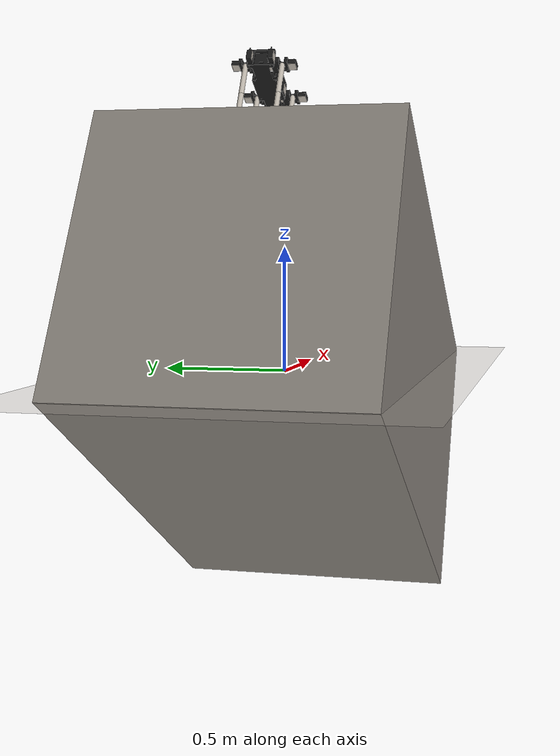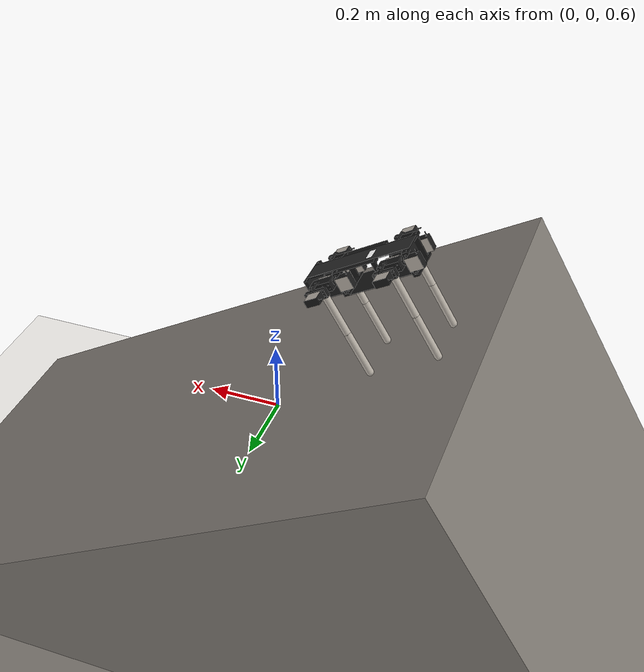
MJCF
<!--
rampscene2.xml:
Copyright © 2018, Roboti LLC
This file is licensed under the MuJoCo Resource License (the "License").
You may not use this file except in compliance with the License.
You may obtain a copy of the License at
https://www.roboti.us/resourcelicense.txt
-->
<mujoco model="Pupper">
<compiler angle="radian" meshdir="mesh/" texturedir="texture/"/>

  <visual>
    <quality shadowsize="16384"/>
  </visual>

  <default>
    <joint type="hinge" limited="true" armature="0.01936" solimplimit="0.9 0.95 0.01" solreflimit="0.01 1" stiffness="0.1" damping="0.5"/>
    <geom conaffinity="0" contype="1" friction="0.2 0.0005 0.00001" condim="6" solimp="0.9 0.95 0.01" solref="0.01 1"/>
    <position forcelimited="true"/>
</default>

    <include file="rampscene2.xml"/>

    <option solver="CG" tolerance="1e-6"/>

    <size nconmax="500" njmax="5000" nstack="5000000"/>

<size nstack="300000" nuser_geom="1"/>

<option timestep="0.0001"/>

<asset>
    <texture builtin="gradient" height="100" rgb1="1 1 1" rgb2="0 0 0" type="skybox" width="100"/>
    <texture builtin="flat" height="1278" mark="cross" markrgb="1 1 1" name="texgeom" random="0.01" rgb1="0.8 0.6 0.4" rgb2="0.8 0.6 0.4" type="cube" width="127"/>
    <material name="geom" texture="texgeom" texuniform="true"/>
  <mesh file="Body.stl"/>
  <mesh file="CLS6336HV.stl"/>
  <mesh file="Hub.stl"/>
  <mesh file="ServoHorn.stl"/>
  <mesh file="UpperLeg.stl"/>
  <mesh file="LowerLeg.stl"/>
  <texture type="2d" file="Oak.png"/>
  <texture type="2d" file="CarbonFiber2D.png" name="CarbonFiber2D"/>
  <texture type="cube" file="CarbonFiber.png" gridsize="3 4" gridlayout=".U..LFRB.D.."/>
  <texture type="cube" file="CLS6336HV.png"/>
  <material name="CarbonFiber" texture="CarbonFiber" specular="0.9" shininess="0.9" reflectance="0.3"/>
  <material name="CLS6336HV" texture="CLS6336HV" specular="0.9" shininess="0.9" reflectance="0.3"/>
  <material name="CarbonFiber2D" texture="CarbonFiber2D" specular="0.9" shininess="0.9" reflectance="0.3"/>
  <material name="Oak" texture="Oak" specular="0.9" shininess="0.9" reflectance="0.3" texrepeat="4 4"/>
  <material name="ABS" rgba=".1 .1 .1 1"/>
</asset>

<worldbody>
    <light pos="0.4 -0.2 1.5" dir="-0.4 0.2 -1.5" cutoff="35"/>
    <geom type="plane" material="Oak" size="2 2 .4" conaffinity="1" condim="3" name="floor"/>
    <body name="torso" pos="-0.252 0 1.1225"  quat="0.9659258262890683 0 0.25881904510252074 0">
        <camera name="track" mode="trackcom" pos="0 -2 0.3" xyaxes="1 0 0 0 0 1"/>
        <freejoint/>
        <body pos="0.0 0.0 -0.03425" quat="-0.7071068 0 0 0.7071068">
          <camera name="puppercam" pos="0 0.12 0.11" quat="0.7453559925 0.6666666 0 0"/>
          <geom type="mesh" mesh="Body" pos="0 -0.133925 0.0015" material="ABS"/>
          <site type="box" pos="0 0 0.0666" size="0.03 0.15 0.002" material="CarbonFiber" rgba=".5 .5 .5 .1"/>
          <!--fr servo-->
          <body pos="0.05 0.028 0.0542" quat="0 -0.7071068 0 0.7071068">
            <geom type="mesh" mesh="CLS6336HV" material="ABS"/>
            <site type="box" pos="0.0205 -0.02 0.01" size="0.018 0.019 0.0101" material="CLS6336HV"/>
          </body>
          <!--fl servo-->
          <body pos="-0.03 0.028 0.0542" quat="0 -0.7071068 0 0.7071068">
            <geom type="mesh" mesh="CLS6336HV" material="ABS"/>
            <site type="box" pos="0.0205 -0.02 0.01" size="0.018 0.019 0.0101" material="CLS6336HV"/>
          </body>
          <!--br servo-->
          <body pos="0.05 -0.1721 0.0542" quat="0 -0.7071068 0 0.7071068">
            <geom type="mesh" mesh="CLS6336HV" material="ABS"/>
            <site type="box" pos="0.0205 -0.02 0.01" size="0.018 0.019 0.0101" material="CLS6336HV"/>
          </body>
          <body pos="-0.03 -0.1721 0.0542" quat="0 -0.7071068 0 0.7071068">
            <!--bl servo-->
            <geom type="mesh" mesh="CLS6336HV" material="ABS"/>
            <site type="box" pos="0.0205 -0.02 0.01" size="0.018 0.019 0.0101" material="CLS6336HV"/>
          </body>
        </body>

        <body name="fr_module" pos="0.1 -0.04 0">
            <body pos="-0.02 -0.042 0.022" quat="0.7071068 0 0.7071068 0">
              <geom type="mesh" mesh="Hub" material="ABS"/>
              <!-- Why are there two different sites here? Do we even use both of them? -->
              <site type="box" pos="0.0129 -0.02 0.02955" quat="0.7071068 0 -0.7071068 0" size="0.018 0.019 0.0101" material="CLS6336HV"/>
              <site type="box" pos="0.0129 0.044 0.02955" quat="0 -0.7071068 0 0.7071068" size="0.018 0.019 0.0101" material="CLS6336HV"/>
            </body>
            <joint name="fr_x" axis="1 0 0" range="-1.57 1.57"/>
            <body name="fr" pos="0 -0.03 0">
                <joint name="fr_y" axis="0 1 0" range="-1.57 1.57"/>
                <geom axisangle="0 1 0 0" name="fr" fromto="0 0 0 0 0 -0.125" size="0.01" type="capsule" material="CarbonFiber2D" density="50"/>
                <body name="fr2" pos="0 0 -0.1235">
                    <joint name="fr_y2" axis="0 1 0" range="-3.14 0.0"/>
                    <geom axisangle="0 1 0 0" name="fr_l2" fromto="0 0 0 0 0 -0.125" size="0.01" type="capsule" material="CarbonFiber2D" density="50"/>
                </body>
            </body>
        </body>

        <body name="fl_module" pos="0.1 0.04 0">
            <body pos="-0.022 0.042 -0.004" quat="0 0.7071068 0 0.7071068">
              <geom type="mesh" mesh="Hub" material="ABS"/>
              <!-- Why are there two different sites here? Do we even use both of them? -->
              <site type="box" pos="0.0129 -0.02 0.02955" quat="0.7071068 0 -0.7071068 0" size="0.018 0.019 0.0101" material="CLS6336HV"/>
              <site type="box" pos="0.0129 0.044 0.02955" quat="0 -0.7071068 0 0.7071068" size="0.018 0.019 0.0101" material="CLS6336HV"/>
            </body>
            <joint name="fl_x" axis="1 0 0" range="-1.57 1.57"/>
            <body name="fl" pos="0 0.03 0">
                <joint name="fl_y" axis="0 1 0" range="-1.57 1.57"/>
                <geom axisangle="0 1 0 0" name="fl" fromto="0 0 0 0 0 -0.125" size="0.01" type="capsule" material="CarbonFiber2D" density="50"/>
                <body name="fl2" pos="0 0 -0.1235">
                    <joint name="fl_y2" axis="0 1 0" range="-3.14 0.0"/>
                    <geom axisangle="0 1 0 0" name="fl_l2" fromto="0 0 0 0 0 -0.125" size="0.01" type="capsule" material="CarbonFiber2D" density="50"/>
                </body>
            </body>
        </body>

        <body name="br_module" pos="-0.1 -0.04 0">
            <body pos="-0.02 -0.042 0.022" quat="0.7071068 0 0.7071068 0">
              <geom type="mesh" mesh="Hub" material="ABS"/>
              <!-- Why are there two different sites here? Do we even use both of them? -->
              <site type="box" pos="0.0129 -0.02 0.02955" quat="0.7071068 0 -0.7071068 0" size="0.018 0.019 0.0101" material="CLS6336HV"/>
              <site type="box" pos="0.0129 0.044 0.02955" quat="0 -0.7071068 0 0.7071068" size="0.018 0.019 0.0101" material="CLS6336HV"/>
            </body>
            <joint name="br_x" axis="1 0 0" range="-1.57 1.57"/>
            <body name="br" pos="0 -0.03 0">
                <joint name="br_y" axis="0 1 0" range="-1.57 1.57"/>
                <geom axisangle="0 1 0 0" name="br" fromto="0 0 0 0 0 -0.125" size="0.01" type="capsule" material="CarbonFiber2D" density="50"/>
                <body name="br2" pos="0 0 -0.1235">
                    <joint name="br_y2" axis="0 1 0" range="-3.14 0.0"/>
                    <geom axisangle="0 1 0 0" name="br_l2" fromto="0 0 0 0 0 -0.125" size="0.01" type="capsule" material="CarbonFiber2D" density="50"/>
                </body>
            </body>
        </body>

        <body name="bl_module" pos="-0.1 0.04 0">
            <body pos="-0.022 0.042 -0.004" quat="0 0.7071068 0 0.7071068">
              <geom type="mesh" mesh="Hub" material="ABS"/>
              <!-- Why are there two different sites here? Do we even use both of them? -->
              <site type="box" pos="0.0129 -0.02 0.02955" quat="0.7071068 0 -0.7071068 0" size="0.018 0.019 0.0101" material="CLS6336HV"/>
              <site type="box" pos="0.0129 0.044 0.02955" quat="0 -0.7071068 0 0.7071068" size="0.018 0.019 0.0101" material="CLS6336HV"/>
            </body>
            <joint name="bl_x" axis="1 0 0" range="-1.57 1.57"/>
            <body name="bl" pos="0 0.03 0">
                <joint name="bl_y" axis="0 1 0" range="-1.57 1.57"/>
                <geom axisangle="0 1 0 0" name="bl" fromto="0 0 0 0 0 -0.125" size="0.01" type="capsule" material="CarbonFiber2D" density="50"/>
                <body name="bl2" pos="0 0 -0.1235">
                    <joint name="bl_y2" axis="0 1 0" range="-3.14 0.0"/>
                    <geom axisangle="0 1 0 0" name="bl_l2" fromto="0 0 0 0 0 -0.125" size="0.01" type="capsule" material="CarbonFiber2D" density="50"/>
                </body>
            </body>
        </body>
    </body>
</worldbody>

<actuator>
  <!-- kp: Position feedback gain.  -->
  <!-- forcerange: Range for clamping the force output. The compiler expects the first value to be no greater than the second value.  -->
      <position gear="1" joint="fr_x" name="fr_x"   kp="300" forcerange="-6.0 6.0"/>
      <position gear="1" joint="fr_y" name="fr_y"   kp="300" forcerange="-6.0 6.0"/>
      <position gear="1" joint="fr_y2" name="fr_y2" kp="300" forcerange="-6.0 6.0"/>

      <position gear="1" joint="fl_x" name="fl_x"   kp="300" forcerange="-6.0 6.0"/>
      <position gear="1" joint="fl_y" name="fl_y"   kp="300" forcerange="-6.0 6.0"/>
      <position gear="1" joint="fl_y2" name="fl_y2" kp="300" forcerange="-6.0 6.0"/>

      <position gear="1" joint="br_x" name="br_x"   kp="300" forcerange="-6.0 6.0"/>
      <position gear="1" joint="br_y" name="br_y"   kp="300" forcerange="-6.0 6.0"/>
      <position gear="1" joint="br_y2" name="br_y2" kp="300" forcerange="-6.0 6.0"/>

      <position gear="1" joint="bl_x" name="bl_x"   kp="300" forcerange="-6.0 6.0"/>
      <position gear="1" joint="bl_y" name="bl_y"   kp="300" forcerange="-6.0 6.0"/>
      <position gear="1" joint="bl_y2" name="bl_y2" kp="300" forcerange="-6.0 6.0"/>
</actuator>
</mujoco>

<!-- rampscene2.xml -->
<mujoco>
    <compiler meshdir="mesh/" texturedir="texture/"/>

    <statistic extent="2" meansize=".05"/>

    <option timestep="0.005" solver="Newton" iterations="30" tolerance="1e-10" cone="elliptic"/>

    <visual>
        <rgba haze="0.15 0.25 0.35 1"/>
        <quality shadowsize="2048"/>
        <map stiffness="700" shadowscale="0.5" fogstart="10" fogend="15" zfar="40" haze="0.3"/>
    </visual>

    <asset>
        <texture type="skybox" builtin="gradient" rgb1="0.3 0.5 0.7" rgb2="0 0 0" width="512" height="512"/>
        <texture name="texobj" type="cube" builtin="checker" rgb1=".2 .3 .4" rgb2=".1 0.15 0.2"
            width="512" height="512" mark="cross" markrgb=".8 .8 .8"/>
        <texture name="texplane" type="2d" file="Oak.png"/>
        <texture name="texmarble" type="cube" file="Marble.png"/>

        <material name="matplane" reflectance="0.3" texture="texplane" texrepeat="1 1" texuniform="true"/>
        <material name="matobj" reflectance="0.3" texture="texobj" texrepeat="1 1" texuniform="true"/>
        <material name="matmarble" texture="texmarble" rgba=".7 .7 .7 1"/>
    </asset>

    <worldbody>
        <light directional="true" diffuse=".4 .4 .4" specular="0.1 0.1 0.1" pos="0 0 5.0" dir="0 0 -1" castshadow="false"/>
        <light directional="true" diffuse=".6 .6 .6" specular="0.2 0.2 0.2" pos="0 0 4" dir="0 0 -1"/>
        <geom name="ground" type="plane" size="0 0 1" pos="0 0 0" material="matplane" condim="3"/>
        <!-- The ramp dimensions should be s.t. the plane of the floor bisects the rectangle -->
        <!-- z = 0.5*length of ramp. We want nice numbers so length = 1 -->
        <!-- x = 0.5*width_box = 0.5tan(\theta) = 0.5*tan(\pi/6) -->
        <!-- y = 0.5*depth_box = something reasonable. We set x = y here for some cute symmetry -->
        <geom type="box" size="1 0.5773502691896257 0.5773502691896257" material="matmarble" pos="0 0 0" quat="0.9659258262890683 0 0.25881904510252074 0" group="1" condim="3" name="ramp30"/>
        <!-- quat = "cos(π/8) sin(π/8) 0 0". This corresponds to a 45 degree

            rotation about vecotor [1, 0, 0] (i.e. x-axis) to create a 45 degree ramp-->
    </worldbody>

</mujoco>
